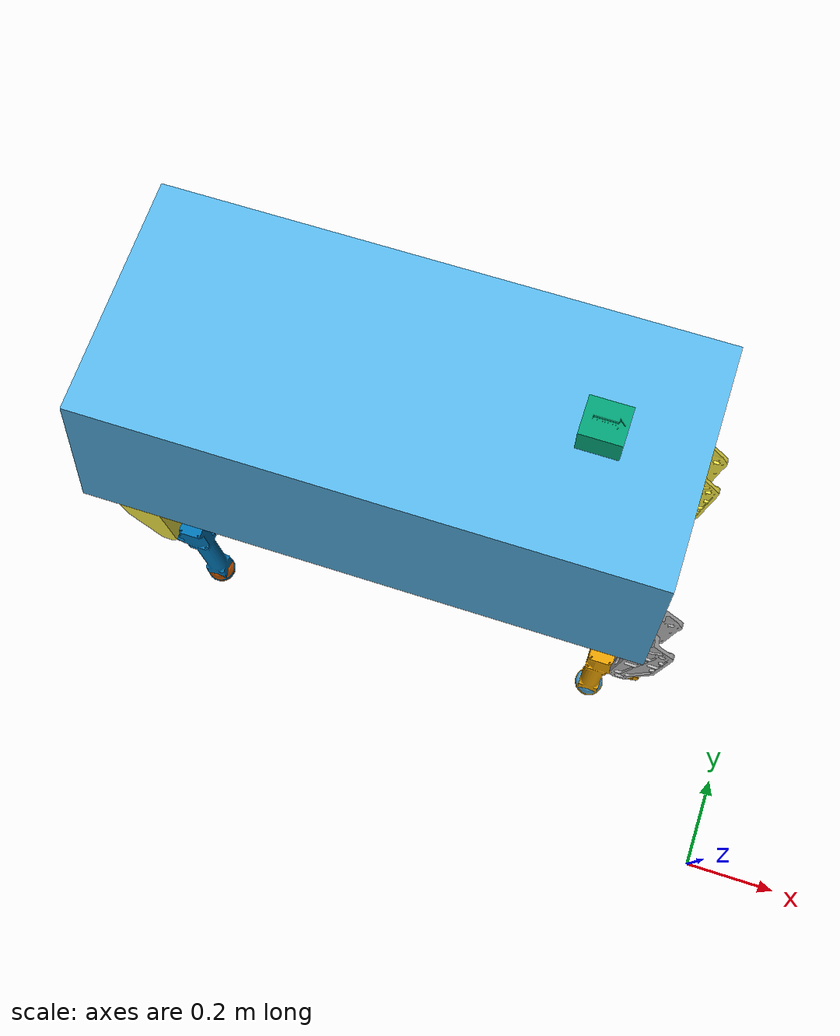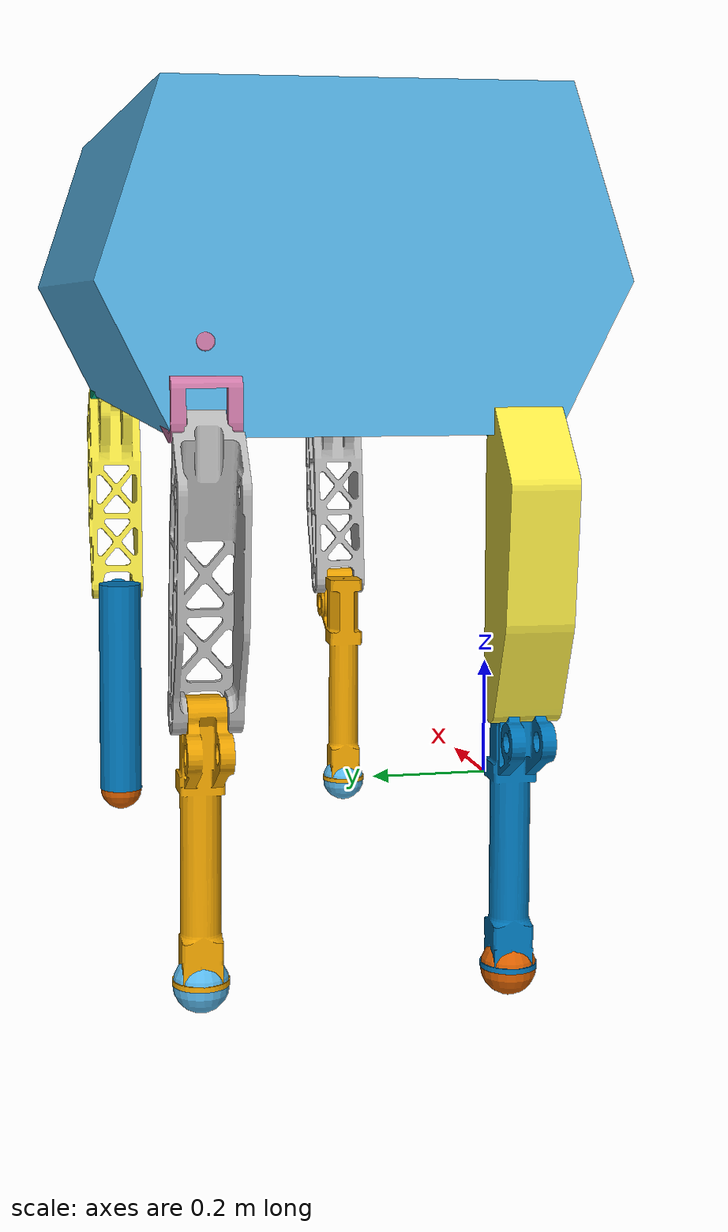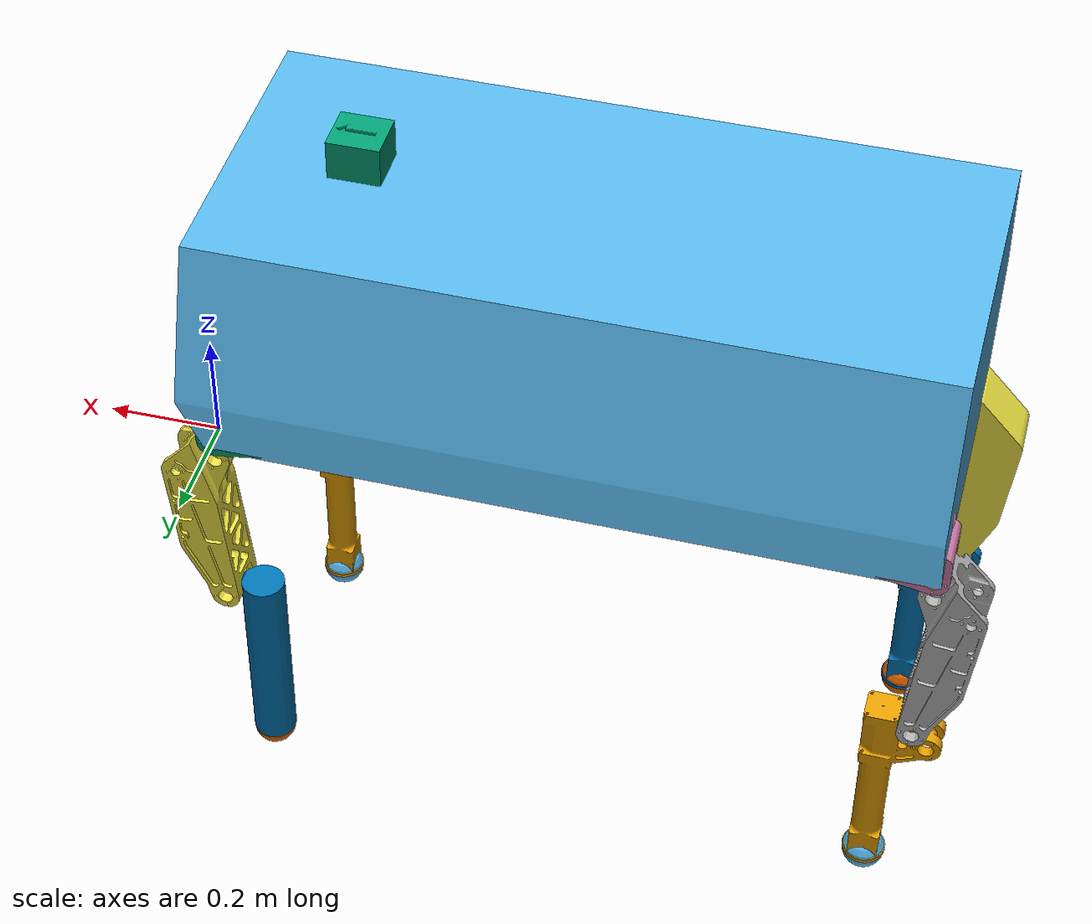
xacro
<?xml version="1.0"?>
<robot xmlns:xacro="http://www.ros.org/wiki/xacro" name="ehbot" >

<!--link and joint configuration-->

    <xacro:property name="offset_fj2" value="-1.59841"/>
    <xacro:property name="offset_fj1" value="0.800364"/>
    <xacro:property name="offset_rj2" value="1.59841"/>
    <xacro:property name="offset_rj1" value="-0.800364"/>
    <xacro:property name="Enable_offset" value="0"/>

    <link name="world"> </link>

    <joint name="world_base_joint" type="floating">
        <origin xyz="-0.8 0.5 0.880" rpy="0 0 0" />
        <parent link="world" />
        <child  link="torsor" />
    </joint>

    <link name="torsor">
        <inertial>
            <origin xyz="0.0 0.0 -0.06" rpy="0 0 0" />
            <mass   value="91" />
            <inertia
                ixx="3.21847046739878"
                ixy="0.000120950424453411"
                ixz="0.00371240385169517"
                iyy="8.77763016485756"
                iyz="0.00439125064440664"
                izz="9.57066327503177" />
        </inertial>
        <visual>
            <origin xyz="0 0 0" rpy="0 0 0" />
            <geometry>
            <mesh
              filename="package://bigdog_description/meshes/visual/torsor.STL" />
            </geometry>
            <material name="ehbot_color"/>
        </visual>
        <collision>
            <origin xyz="0 0 0" rpy="0 0 0" />
            <geometry>
            <mesh
              filename="package://bigdog_description/meshes/visual/torsor.STL" />
            </geometry>
        </collision>
    </link>

    <link name="link_lf_leg_thigh_roll">
        <inertial>
            <origin xyz="-0.094 0.0 -0.022" rpy="0 0 0" />
            <mass   value="4.5" />
            <inertia
                ixx="0.00982462171332848"
                ixy="-0.00105561145994919"
                ixz="-0.00234857174109823"
                iyy="0.0466176952693577"
                iyz="-0.000981599552383667"
                izz="0.0448674267828951" />
        </inertial>
        <visual>
            <origin xyz="0 0 0" rpy="0 0 0" />
            <geometry>
            <mesh
              filename="package://bigdog_description/meshes/visual/link_lf_leg_thigh_roll.STL" />
            </geometry>
            <material name="ehbot_color"/>
        </visual>
        <collision>
            <origin xyz="0 0 0" rpy="0 0 0" />
            <geometry>
            <mesh
              filename="package://bigdog_description/meshes/visual/link_lf_leg_thigh_roll.STL" />
            </geometry>
        </collision>
    </link>

    <joint name="joint_lf_leg_thigh_roll" type="revolute">
        <origin  xyz="0.50572 0.175 -0.092" rpy="0 0 0" />
        <parent  link="torsor" />
        <child   link="link_lf_leg_thigh_roll" />
        <axis    xyz="1 0 0" />
        <limit
            upper="3.1415926"
            lower="-3.1415926"
            effort="400"
            velocity="10" />
        <dynamics damping="30.0" friction="0.0"/>
    </joint>

    <link name="link_lf_leg_thigh_pitch">
        <inertial>
            <origin xyz="0.015 0.0 -0.13" rpy="0 0 0" />
            <mass   value="4.0" />
            <inertia
                ixx="0.0466544119236218"
                ixy="-1.10743990761792E-09"
                ixz="-0.00158997011349249"
                iyy="0.0459784407608387"
                iyz="4.49682466619388E-08"
                izz="0.0052871361451635" />
        </inertial>
        <visual>
            <origin xyz="0 0 0" rpy="0 0 3.1415926" />
            <geometry>
            <mesh
              filename="package://bigdog_description/meshes/visual/link_lf_leg_thigh_pitch.STL" />
            </geometry>
            <material name="ehbot_color"/>
        </visual>
        <collision>
            <origin xyz="0 0 0" rpy="0 0 3.1415926" />
            <geometry>
            <mesh
              filename="package://bigdog_description/meshes/visual/link_lf_leg_thigh_pitch.STL" />
            </geometry>
        </collision>
    </link>

    <joint name="joint_lf_leg_thigh_pitch" type="revolute">
        <origin xyz="0 0 -0.085238" rpy="0 0 0" />
        <parent link="link_lf_leg_thigh_roll" />
        <child  link="link_lf_leg_thigh_pitch" />
        <axis   xyz="0 1 0" />
        <limit
            upper="3.1415926"
            lower="-3.1415926"
            effort="400"
            velocity="10" />
        <dynamics damping="30.0" friction="0.0"/>
    </joint>

    <link name="link_lf_leg_knee_pitch">
        <inertial>
            <origin xyz="-0.04 0.0 -0.14" rpy="0 0 0" />
            <mass   value="2.5" />
            <inertia
                ixx="0.0353013691970067"
                ixy="-6.09294126991979E-09"
                ixz="0.00381057869029104"
                iyy="0.0367890799827388"
                iyz="2.35681115848283E-08"
                izz="0.00273372664629618" />
        </inertial>
        <visual>
            <origin xyz="0 0 0" rpy="0 0 0" />
            <geometry>
            <mesh
              filename="package://bigdog_description/meshes/visual/link_lf_leg_knee_pitch.STL" />
            </geometry>
            <material name="ehbot_color"/>
        </visual>
        <collision>
            <origin xyz="0 0 0" rpy="0 0 0" />
            <geometry>
            <mesh
              filename="package://bigdog_description/meshes/visual/link_lf_leg_knee_pitch.STL" />
            </geometry>
        </collision>
    </link>

    <joint name="joint_lf_leg_knee_pitch" type="revolute">
        <origin xyz="0 0 -0.31" rpy="0 0 0" />
        <parent link="link_lf_leg_thigh_pitch" />
        <child  link="link_lf_leg_knee_pitch" />
        <axis   xyz="0 1 0" />
        <limit
            upper="3.1415926"
            lower="-3.1415926"
            effort="400"
            velocity="10" />
        <dynamics damping="30.0" friction="0.0"/>
    </joint>

    <link name="link_lf_leg_foot_fixed">
        <visual>
            <origin xyz="0 0 0"  rpy="0 0 0" />
            <geometry>
                    <sphere radius="0.03175"/>
            </geometry>
            <material name="ehbot_color"/>
        </visual>
        <collision>
            <origin xyz="0 0 0" rpy="0 0 0" />
            <geometry>
                    <sphere radius="0.03175"/>
            </geometry>
        </collision>
    </link>

    <joint name="joint_lf_leg_foot_fixed" type="fixed">
        <origin xyz="-0.0455 0 -0.311" rpy="0 0 0" />
        <parent link="link_lf_leg_knee_pitch" />
        <child  link="link_lf_leg_foot_fixed" />
    </joint>

  <link name="link_rf_leg_thigh_roll">
    <inertial>
      <origin xyz="-0.094 0.0 -0.022" rpy="0 0 0" />
      <mass   value="4.5" />
      <inertia
        ixx="0.00982462181328556"
        ixy="-0.00105561106736501"
        ixz="-0.00234857155524412"
        iyy="0.0466176940588004"
        iyz="-0.000981599593828068"
        izz="0.0448674261146214" />
    </inertial>
    <visual>
      <origin xyz="0 0 0" rpy="0 0 0" />
      <geometry>
        <mesh
          filename="package://bigdog_description/meshes/visual/link_rf_leg_thigh_roll.STL" />
      </geometry>
      <material name="ehbot_color"/>
    </visual>
    <collision>
      <origin xyz="0 0 0" rpy="0 0 0" />
      <geometry>
        <mesh
          filename="package://bigdog_description/meshes/visual/link_rf_leg_thigh_roll.STL" />
      </geometry>
    </collision>
  </link>

  <joint name="joint_rf_leg_thigh_roll" type="revolute">
    <origin xyz="0.50572 -0.175 -0.092" rpy="0 0 0" />
    <parent link="torsor" />
    <child  link="link_rf_leg_thigh_roll" />
    <axis   xyz="1 0 0" />
  <limit
    upper="3.1415926"
    lower="-3.1415926"
    effort="400"
    velocity="10" />
    <dynamics damping="30.0" friction="0.0"/>
  </joint>

  <link name="link_rf_leg_thigh_pitch">
    <inertial>
      <origin xyz="0.015 0.0 -0.13" rpy="0 0 0" />
      <mass value="4.0" />
      <inertia
        ixx="0.046654411255362"
        ixy="-9.14884872055615E-10"
        ixz="-0.001589969766758"
        iyy="0.0459784397814242"
        iyz="4.58275775198651E-08"
        izz="0.0052871370562076" />
    </inertial>
    <visual>
      <origin xyz="0 0 0" rpy="0 0 3.1415926" />
      <geometry>
        <mesh
          filename="package://bigdog_description/meshes/visual/link_rf_leg_thigh_pitch.STL" />
      </geometry>
      <material name="ehbot_color"/>
    </visual>
    <collision>
      <origin
        xyz="0 0 0"
        rpy="0 0 3.1415926" />
      <geometry>
        <mesh
          filename="package://bigdog_description/meshes/visual/link_rf_leg_thigh_pitch.STL" />
      </geometry>
    </collision>
  </link>

    <joint name="joint_rf_leg_thigh_pitch" type="revolute">
        <origin xyz="0 0 -0.085238" rpy="0 0 0" />
        <parent link="link_rf_leg_thigh_roll" />
        <child  link="link_rf_leg_thigh_pitch" />
        <axis   xyz="0 1 0" />
        <limit
            upper="3.1415926"
            lower="-3.1415926"
            effort="400"
            velocity="10" />
        <dynamics damping="30.0" friction="0.0"/>
    </joint>

    <link name="link_rf_leg_knee_pitch">
        <inertial>
            <origin xyz="-0.04 0.0 -0.14" rpy="0 0 0" />
            <mass value="2.5" />
            <inertia ixx="0.035301351372526"
                ixy="-6.10115530948123E-09"
                ixz="0.00381057800772144"
                iyy="0.0367890621305295"
                iyz="2.08352443066853E-08"
                izz="0.00273372592686392" />
        </inertial>
        <visual>
            <origin xyz="0 0 0" rpy="0 0 0" />
            <geometry>
            <mesh
              filename="package://bigdog_description/meshes/visual/link_rf_leg_knee_pitch.STL" />
            </geometry>
            <material name="ehbot_color"/>
        </visual>
        <collision>
            <origin xyz="0 0 0" rpy="0 0 0" />
            <geometry>
            <mesh
              filename="package://bigdog_description/meshes/visual/link_rf_leg_knee_pitch.STL" />
            </geometry>
        </collision>
    </link>

    <joint name="joint_rf_leg_knee_pitch" type="revolute">
        <origin xyz="0 0 -0.31" rpy="0 0 0" />
        <parent link="link_rf_leg_thigh_pitch" />
        <child  link="link_rf_leg_knee_pitch" />
        <axis   xyz="0 1 0" />
        <limit
            upper="3.1415926"
            lower="-3.1415926"
            effort="400"
            velocity="10" />
        <dynamics damping="30.0" friction="0.0"/>
    </joint>

    <link  name="link_rf_leg_foot_fixed">

        <visual>
            <origin xyz="0 0 0" rpy="0 0 0" />
            <geometry>
                    <sphere radius="0.03175"/>
            </geometry>
            <material name="ehbot_color"/>
        </visual>
        <collision>
            <origin xyz="0 0 0" rpy="0 0 0" />
            <geometry>
                    <sphere radius="0.03175"/>
            </geometry>
        </collision>
    </link>

    <joint name="joint_rf_leg_foot_fixed" type="fixed">
        <origin xyz="-0.0455 0 -0.311" rpy="0 0 0" />
        <parent link="link_rf_leg_knee_pitch" />
        <child  link="link_rf_leg_foot_fixed" />
    </joint>

    <link name="link_rr_leg_thigh_roll">
        <inertial>
            <origin xyz="0.094 0.0 -0.022" rpy="0 0 0" />
            <mass   value="4.5" />
            <inertia
                ixx="0.00982462172543857"
                ixy="-0.00105561121449616"
                ixz="-0.00234857160884562"
                iyy="0.0466176944294046"
                iyz="-0.000981599590713499"
                izz="0.0448674263021047" />
        </inertial>
        <visual>
            <origin xyz="0 0 0" rpy="0 0 3.1415926" />
            <geometry>
            <mesh
               filename="package://bigdog_description/meshes/visual/link_rr_leg_thigh_roll.STL" />
            </geometry>
            <material name="ehbot_color"/>
        </visual>
        <collision>
            <origin xyz="0 0 0"  rpy="0 0 3.1415926" />
            <geometry>
            <mesh
               filename="package://bigdog_description/meshes/visual/link_rr_leg_thigh_roll.STL" />
            </geometry>
        </collision>
    </link>

    <joint name="joint_rr_leg_thigh_roll" type="revolute">
        <origin xyz="-0.50572 -0.175 -0.092" rpy="0 0 0" />
        <parent link="torsor" />
        <child  link="link_rr_leg_thigh_roll" />
        <axis   xyz="1 0 0" />
        <limit
            upper="3.1415926"
            lower="-3.1415926"
            effort="400"
            velocity="10" />
        <dynamics damping="30.0" friction="0.0"/>
    </joint>

    <link name="link_rr_leg_thigh_pitch">
        <inertial>
            <origin xyz="-0.015 0.0 -0.13" rpy="0 0 0" />
            <mass   value="4.0" />
            <inertia
                ixx="0.0466544116697395"
                ixy="-9.39666746655299E-10"
                ixz="-0.0015899698410406"
                iyy="0.0459784401767021"
                iyz="4.5541678418169E-08"
                izz="0.00528713706522366" />
        </inertial>
        <visual>
            <origin xyz="0 0 0" rpy="0 0 0" />
            <geometry>
            <mesh
              filename="package://bigdog_description/meshes/visual/link_rr_leg_thigh_pitch.STL" />
            </geometry>
            <material name="ehbot_color"/>
        </visual>
        <collision>
            <origin xyz="0 0 0" rpy="0 0 0" />
            <geometry>
            <mesh
              filename="package://bigdog_description/meshes/visual/link_rr_leg_thigh_pitch.STL" />
            </geometry>
        </collision>
    </link>

    <joint name="joint_rr_leg_thigh_pitch"  type="revolute">
        <origin xyz="0 0 -0.085238"  rpy="0 0 0" />
        <parent link="link_rr_leg_thigh_roll" />
        <child  link="link_rr_leg_thigh_pitch" />
        <axis   xyz="0 1 0" />
        <limit
            upper="3.1415926"
            lower="-3.1415926"
            effort="400"
            velocity="10" />
        <dynamics damping="30.0" friction="0.0"/>
    </joint>

    <link name="link_rr_leg_knee_pitch">
        <inertial>
            <origin xyz="0.04 0.0 -0.14" rpy="0 0 0" />
            <mass   value="2.5" />
            <inertia
                ixx="0.0353013687923295"
                ixy="-6.1227552617674E-09"
                ixz="0.00381057825289451"
                iyy="0.0367890794730177"
                iyz="2.3577119714497E-08"
                izz="0.00273372651429908" />
        </inertial>
        <visual>
            <origin xyz="0 0 0" rpy="0 0 3.1415926" />
            <geometry>
            <mesh
               filename="package://bigdog_description/meshes/visual/link_rr_leg_knee_pitch.STL" />
            </geometry>
            <material name="ehbot_color"/>
        </visual>
        <collision>
            <origin xyz="0 0 0" rpy="0 0 3.1415926" />
            <geometry>
            <mesh
               filename="package://bigdog_description/meshes/visual/link_rr_leg_knee_pitch.STL" />
            </geometry>
        </collision>
    </link>

    <joint name="joint_rr_leg_knee_pitch" type="revolute">
        <origin xyz="0 0 -0.31" rpy="0 0 0" />
        <parent link="link_rr_leg_thigh_pitch" />
        <child  link="link_rr_leg_knee_pitch" />
        <axis   xyz="0 1 0" />
        <limit
            upper="3.1415926"
            lower="-3.1415926"
            effort="400"
            velocity="10" />
        <dynamics damping="30.0" friction="0.0"/>
    </joint>

    <link name="link_rr_leg_foot_fixed">

        <visual>
            <origin xyz="0 0 0" rpy="0 0 0" />
            <geometry>
                    <sphere radius="0.03175"/>
            </geometry>
            <material name="ehbot_color"/>
        </visual>
        <collision>
            <origin xyz="0 0 0" rpy="0 0 0" />
            <geometry>
                  <sphere radius="0.03175"/>
            </geometry>
        </collision>
    </link>

    <joint name="joint_rr_leg_foot_fixed" type="fixed">
        <origin xyz="0.0455 0 -0.311" rpy="0 0 0" />
        <parent link="link_rr_leg_knee_pitch" />
        <child  link="link_rr_leg_foot_fixed" />
    </joint>

    <link name="link_lr_leg_thigh_roll">
        <inertial>
            <origin xyz="0.094 0.0 -0.022" rpy="0 0 0" />
            <mass   value="4.5" />
            <inertia
                ixx="0.00982462172588083"
                ixy="-0.00105561127204788"
                ixz="-0.00234857164517063"
                iyy="0.0466176946585488"
                iyz="-0.000981599581122774"
                izz="0.0448674264419542" />
        </inertial>
        <visual>
            <origin xyz="0 0 0" rpy="0 0 3.1415926" />
            <geometry>
            <mesh
              filename="package://bigdog_description/meshes/visual/link_lr_leg_thigh_roll.STL" />
            </geometry>
            <material name="ehbot_color"/>
        </visual>
        <collision>
            <origin xyz="0 0 0" rpy="0 0 3.1415926" />
            <geometry>
            <mesh
              filename="package://bigdog_description/meshes/visual/link_lr_leg_thigh_roll.STL" />
            </geometry>
        </collision>
    </link>

    <joint name="joint_lr_leg_thigh_roll" type="revolute">
        <origin xyz="-0.50572 0.175 -0.092" rpy="0 0 0" />
        <parent link="torsor" />
        <child  link="link_lr_leg_thigh_roll" />
        <axis   xyz="1 0 0" />
        <limit
            upper="3.1415926"
            lower="-3.1415926"
            effort="400"
            velocity="10" />
        <dynamics damping="30.0" friction="0.0"/>
    </joint>

    <link name="link_lr_leg_thigh_pitch">
        <inertial>
            <origin xyz="-0.015 0.0 -0.13" rpy="0 0 0" />
            <mass value="4.0" />
            <inertia
                ixx="0.0466544117488234"
                ixy="-9.44320518480174E-10"
                ixz="-0.00158996986915856"
                iyy="0.0459784402421914"
                iyz="4.5427164262361E-08"
                izz="0.00528713708449312" />
        </inertial>
        <visual>
            <origin xyz="0 0 0" rpy="0 0 0" />
            <geometry>
            <mesh
              filename="package://bigdog_description/meshes/visual/link_lr_leg_thigh_pitch.STL" />
            </geometry>
            <material name="ehbot_color"/>
        </visual>
        <collision>
            <origin xyz="0 0 0" rpy="0 0 0" />
            <geometry>
            <mesh
              filename="package://bigdog_description/meshes/visual/link_lr_leg_thigh_pitch.STL" />
            </geometry>
        </collision>
    </link>

    <joint name="joint_lr_leg_thigh_pitch" type="revolute">
        <origin xyz="0 0 -0.085238" rpy="0 0 0" />
        <parent link="link_lr_leg_thigh_roll" />
        <child  link="link_lr_leg_thigh_pitch" />
        <axis   xyz="0 1 0" />
        <limit
            upper="3.1415926"
            lower="-3.1415926"
            effort="400"
            velocity="10" />
        <dynamics damping="30.0" friction="0.0"/>
    </joint>

    <link name="link_lr_leg_knee_pitch">
        <inertial>
            <origin xyz="0.04 0.0 -0.14" rpy="0 0 0" />
            <mass   value="2.5" />
            <inertia
                ixx="0.0353013689169802"
                ixy="-6.11566253830804E-09"
                ixz="0.00381057822904622"
                iyy="0.0367890796154341"
                iyz="2.34905918143336E-08"
                izz="0.00273372651571912" />
        </inertial>
        <visual>
            <origin xyz="0 0 0" rpy="0 0 3.1415926" />
            <geometry>
            <mesh
              filename="package://bigdog_description/meshes/visual/link_lr_leg_knee_pitch.STL" />
            </geometry>
            <material name="ehbot_color"/>
        </visual>
        <collision>
            <origin xyz="0 0 0" rpy="0 0 3.1415926" />
            <geometry>
            <mesh
              filename="package://bigdog_description/meshes/visual/link_lr_leg_knee_pitch.STL" />
            </geometry>
        </collision>
    </link>

    <joint name="joint_lr_leg_knee_pitch" type="revolute">
        <origin xyz="0 0 -0.31" rpy="0 0 0" />
        <parent link="link_lr_leg_thigh_pitch" />
        <child  link="link_lr_leg_knee_pitch" />
        <axis   xyz="0 1 0" />
        <limit
            upper="3.1415926"
            lower="-3.1415926"
            effort="400"
            velocity="10" />
        <dynamics damping="30.0" friction="0.0"/>
    </joint>

    <link name="link_lr_leg_foot_fixed">
        <visual>
            <origin xyz="0 0 0" rpy="0 0 0" />
            <geometry>
                <sphere radius="0.03175"/>
            </geometry>
            <material name="ehbot_color"/>
        </visual>
        <collision>
            <origin xyz="0 0 0" rpy="0 0 0" />
            <geometry>
                <sphere radius="0.03175"/>
            </geometry>
        </collision>
    </link>

    <joint name="joint_lr_leg_foot_fixed" type="fixed">
        <origin xyz="0.0455 0 -0.311" rpy="0 0 0" />
        <parent link="link_lr_leg_knee_pitch" />
        <child  link="link_lr_leg_foot_fixed" />
    </joint>

    <link name="link_torsor_imu">
        <inertial>
            <origin xyz="0.0 0.0 -0.0066" rpy="0 0 0" />
            <mass   value="4.0E-05" />
            <inertia
                ixx="4.03076964082622E-08"
                ixy="6.69730564701523E-17"
                ixz="-4.47571283232843E-11"
                iyy="4.03777695620506E-08"
                iyz="2.7694006039881E-16"
                izz="3.88968027053409E-08" />
        </inertial>
        <visual>
        <origin xyz="0 0 0" rpy="0 0 0" />
            <geometry>
            <mesh
              filename="package://bigdog_description/meshes/visual/link_torsor_imu.STL" />
            </geometry>
        <material name="ehbot_color"/>
        </visual>
        <collision>
            <origin xyz="0 0 0" rpy="0 0 0" />
            <geometry>
            <mesh
              filename="package://bigdog_description/meshes/visual/link_torsor_imu.STL" />
            </geometry>
        </collision>
    </link>

    <joint name="joint_torsor_imu" type="fixed">
        <origin xyz="0.337098453809525 0.000149999999999734 0.207999999999999" rpy="0 0 0" />
        <parent link="torsor" />
        <child  link="link_torsor_imu" />
        <axis   xyz="0 0 0" />
    </joint>

</robot>
